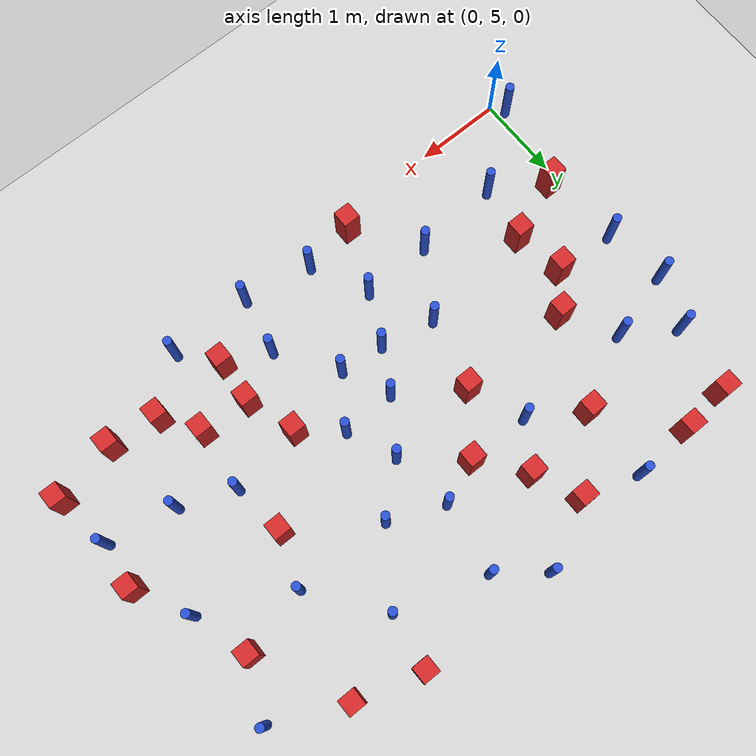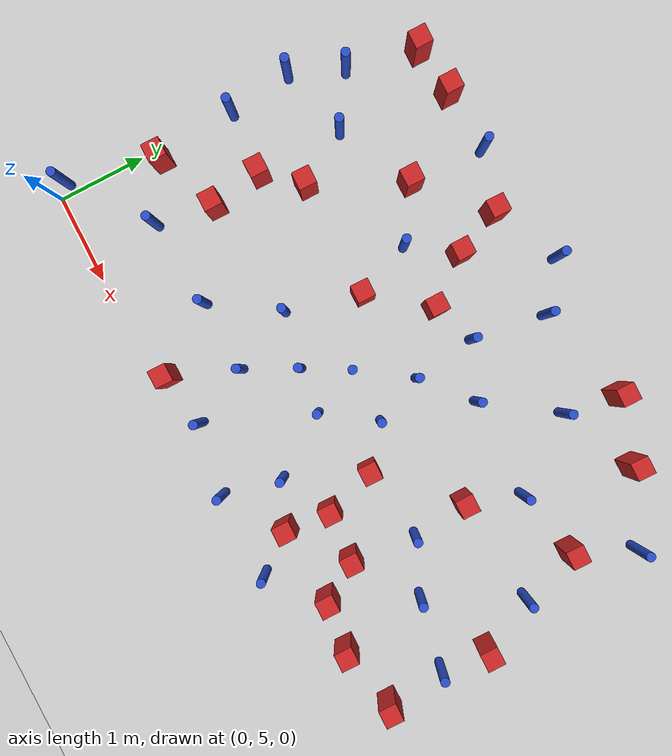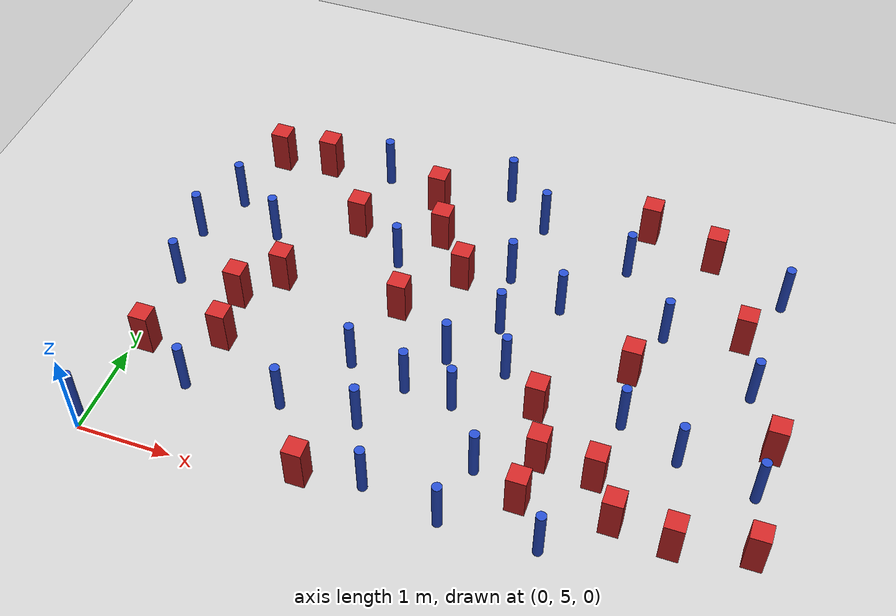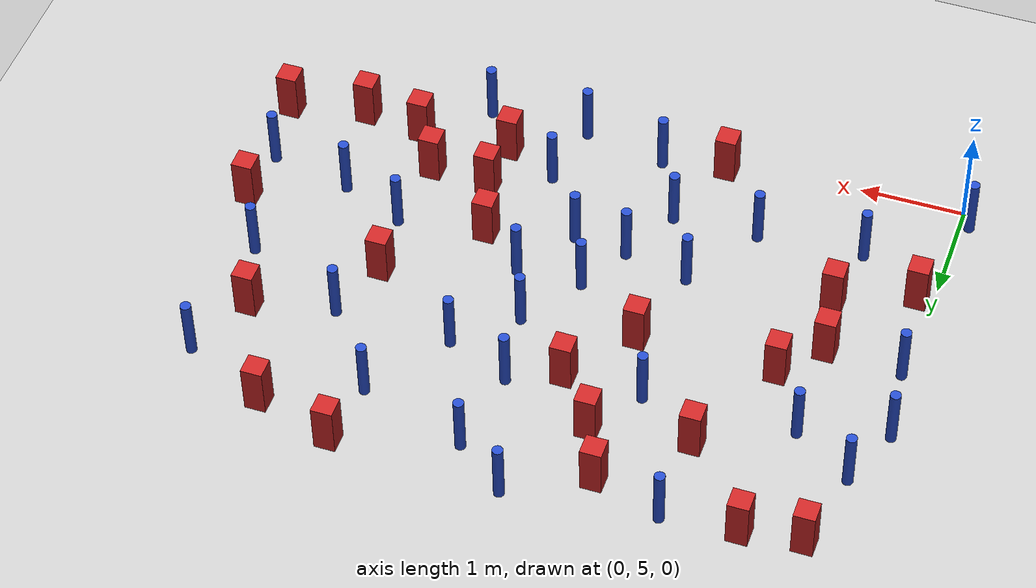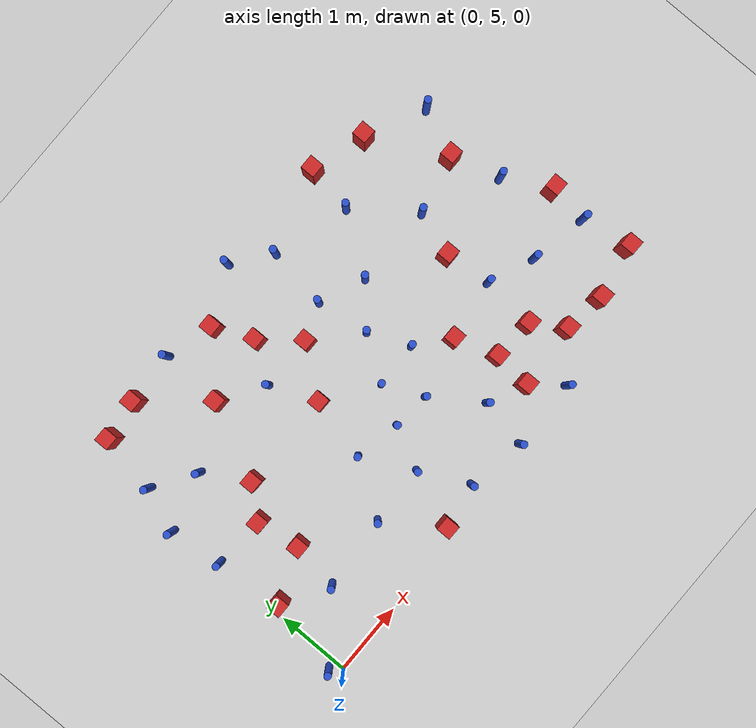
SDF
<sdf version="1.6">
 <world name="default">
  <model name="ground_plane">
   <static>1</static>
   <link name="link">
    <collision name="collision">
     <geometry><plane><normal>0 0 1</normal><size>100 100</size></plane></geometry>
     <surface><friction><ode><mu>100</mu><mu2>50</mu2></ode></friction></surface>
    </collision>
    <visual name="visual">
     <cast_shadows>0</cast_shadows>
     <geometry><plane><normal>0 0 1</normal><size>100 100</size></plane></geometry>
     <material>
      <ambient>1.0 1.0 1.0 1.0</ambient>
      <diffuse>0.8 0.8 0.8 1.0</diffuse>
      <specular>0.01 0.01 0.01 1.000000</specular>
     </material>
    </visual>
   </link>
  </model>
  <model name="square_post_obstacle10">
   <static>true</static>
   <pose>0.151992976209 6.1870169519 1.91545236811e-07 -7.35059704564e-06 1.12565212e-07 2.39332434364e-05</pose>
   <link name="link">
    <pose>0 0 0.25 0 -0 0</pose>
    <inertial>
     <mass>100</mass>
     <inertia>
      <ixx>0.166667</ixx>
      <ixy>0</ixy>
      <ixz>0</ixz>
      <iyy>0.166667</iyy>
      <iyz>0</iyz>
      <izz>0.166667</izz>
     </inertia>
    </inertial>
    <collision name="collision"><geometry><box><size>.2 .2 .5</size></box></geometry></collision>
    <visual name="visual">
     <geometry><box><size>.2 .2 .5</size></box></geometry>
     <material>
      <script><name>Gazebo/Red</name><uri>file://media/materials/scripts/gazebo.material</uri></script>
     </material>
    </visual>
   </link>
  </model>
  <model name="pole_obstacle9">
   <static>true</static>
   <pose>3.36343080901 6.44973814453 7.38925637345e-09 -8.47170692798e-08 1.24976765033e-08 -1.74513093019e-07</pose>
   <link name="link">
    <pose>0 0 0.3 0 -0 0</pose>
    <inertial>
     <mass>1</mass>
     <inertia><ixx>0.145833</ixx><ixy>0</ixy><ixz>0</ixz><iyy>0.145833</iyy><iyz>0</iyz><izz>0.125</izz></inertia>
    </inertial>
    <collision name="collision">
     <geometry><cylinder><radius>0.05</radius><length>.6</length></cylinder></geometry>
    </collision>
    <visual name="visual">
     <geometry><cylinder><radius>0.05</radius><length>.6</length></cylinder></geometry>
     <material>
      <script><name>Gazebo/Blue</name><uri>file://media/materials/scripts/gazebo.material</uri></script>
     </material>
    </visual>
   </link>
  </model>
  <model name="square_post_obstacle19">
   <static>true</static>
   <pose>4.9296306093 7.40265655572 1.91545236811e-07 -7.35059704564e-06 1.12565212e-07 2.39332434364e-05</pose>
   <link name="link">
    <pose>0 0 0.25 0 -0 0</pose>
    <inertial>
     <mass>100</mass>
     <inertia>
      <ixx>0.166667</ixx>
      <ixy>0</ixy>
      <ixz>0</ixz>
      <iyy>0.166667</iyy>
      <iyz>0</iyz>
      <izz>0.166667</izz>
     </inertia>
    </inertial>
    <collision name="collision"><geometry><box><size>.2 .2 .5</size></box></geometry></collision>
    <visual name="visual">
     <geometry><box><size>.2 .2 .5</size></box></geometry>
     <material>
      <script><name>Gazebo/Red</name><uri>file://media/materials/scripts/gazebo.material</uri></script>
     </material>
    </visual>
   </link>
  </model>
  <model name="pole_obstacle15">
   <static>true</static>
   <pose>-0.0874932379194 5.16151113422 7.38925637345e-09 -8.47170692799e-08 1.24976765047e-08 -1.74513093018e-07</pose>
   <link name="link">
    <pose>0 0 0.3 0 -0 0</pose>
    <inertial>
     <mass>1</mass>
     <inertia><ixx>0.145833</ixx><ixy>0</ixy><ixz>0</ixz><iyy>0.145833</iyy><iyz>0</iyz><izz>0.125</izz></inertia>
    </inertial>
    <collision name="collision">
     <geometry><cylinder><radius>0.05</radius><length>.6</length></cylinder></geometry>
    </collision>
    <visual name="visual">
     <geometry><cylinder><radius>0.05</radius><length>.6</length></cylinder></geometry>
     <material>
      <script><name>Gazebo/Blue</name><uri>file://media/materials/scripts/gazebo.material</uri></script>
     </material>
    </visual>
   </link>
  </model>
  <model name="square_post_obstacle31">
   <static>true</static>
   <pose>4.92170670618 6.05286431985 1.91545236811e-07 -7.35059704564e-06 1.12565212e-07 2.39332434364e-05</pose>
   <link name="link">
    <pose>0 0 0.25 0 -0 0</pose>
    <inertial>
     <mass>100</mass>
     <inertia>
      <ixx>0.166667</ixx>
      <ixy>0</ixy>
      <ixz>0</ixz>
      <iyy>0.166667</iyy>
      <iyz>0</iyz>
      <izz>0.166667</izz>
     </inertia>
    </inertial>
    <collision name="collision"><geometry><box><size>.2 .2 .5</size></box></geometry></collision>
    <visual name="visual">
     <geometry><box><size>.2 .2 .5</size></box></geometry>
     <material>
      <script><name>Gazebo/Red</name><uri>file://media/materials/scripts/gazebo.material</uri></script>
     </material>
    </visual>
   </link>
  </model>
  <model name="pole_obstacle28">
   <static>true</static>
   <pose>4.02785560214 8.01584696868 7.38925637345e-09 -8.47170692797e-08 1.24976764867e-08 -1.74513093027e-07</pose>
   <link name="link">
    <pose>0 0 0.3 0 -0 0</pose>
    <inertial>
     <mass>1</mass>
     <inertia><ixx>0.145833</ixx><ixy>0</ixy><ixz>0</ixz><iyy>0.145833</iyy><iyz>0</iyz><izz>0.125</izz></inertia>
    </inertial>
    <collision name="collision">
     <geometry><cylinder><radius>0.05</radius><length>.6</length></cylinder></geometry>
    </collision>
    <visual name="visual">
     <geometry><cylinder><radius>0.05</radius><length>.6</length></cylinder></geometry>
     <material>
      <script><name>Gazebo/Blue</name><uri>file://media/materials/scripts/gazebo.material</uri></script>
     </material>
    </visual>
   </link>
  </model>
  <model name="pole_obstacle32">
   <static>true</static>
   <pose>1.6374002094 9.31407670127 7.38925637345e-09 -8.47170692798e-08 1.24976764881e-08 -1.74513093027e-07</pose>
   <link name="link">
    <pose>0 0 0.3 0 -0 0</pose>
    <inertial>
     <mass>1</mass>
     <inertia><ixx>0.145833</ixx><ixy>0</ixy><ixz>0</ixz><iyy>0.145833</iyy><iyz>0</iyz><izz>0.125</izz></inertia>
    </inertial>
    <collision name="collision">
     <geometry><cylinder><radius>0.05</radius><length>.6</length></cylinder></geometry>
    </collision>
    <visual name="visual">
     <geometry><cylinder><radius>0.05</radius><length>.6</length></cylinder></geometry>
     <material>
      <script><name>Gazebo/Blue</name><uri>file://media/materials/scripts/gazebo.material</uri></script>
     </material>
    </visual>
   </link>
  </model>
  <model name="square_post_obstacle36">
   <static>true</static>
   <pose>0.368827195288 9.18581790718 1.91545236811e-07 -7.35059704564e-06 1.12565212e-07 2.39332434364e-05</pose>
   <link name="link">
    <pose>0 0 0.25 0 -0 0</pose>
    <inertial>
     <mass>100</mass>
     <inertia>
      <ixx>0.166667</ixx>
      <ixy>0</ixy>
      <ixz>0</ixz>
      <iyy>0.166667</iyy>
      <iyz>0</iyz>
      <izz>0.166667</izz>
     </inertia>
    </inertial>
    <collision name="collision"><geometry><box><size>.2 .2 .5</size></box></geometry></collision>
    <visual name="visual">
     <geometry><box><size>.2 .2 .5</size></box></geometry>
     <material>
      <script><name>Gazebo/Red</name><uri>file://media/materials/scripts/gazebo.material</uri></script>
     </material>
    </visual>
   </link>
  </model>
  <model name="pole_obstacle43">
   <static>true</static>
   <pose>2.18197336849 8.08795088133 7.38925637345e-09 -8.47170692793e-08 1.24976764408e-08 -1.74513093041e-07</pose>
   <link name="link">
    <pose>0 0 0.3 0 -0 0</pose>
    <inertial>
     <mass>1</mass>
     <inertia><ixx>0.145833</ixx><ixy>0</ixy><ixz>0</ixz><iyy>0.145833</iyy><iyz>0</iyz><izz>0.125</izz></inertia>
    </inertial>
    <collision name="collision">
     <geometry><cylinder><radius>0.05</radius><length>.6</length></cylinder></geometry>
    </collision>
    <visual name="visual">
     <geometry><cylinder><radius>0.05</radius><length>.6</length></cylinder></geometry>
     <material>
      <script><name>Gazebo/Blue</name><uri>file://media/materials/scripts/gazebo.material</uri></script>
     </material>
    </visual>
   </link>
  </model>
  <model name="square_post_obstacle41">
   <static>true</static>
   <pose>5.19305268845 5.63104877322 1.91545236811e-07 -7.35059704564e-06 1.12565212e-07 2.39332434364e-05</pose>
   <link name="link">
    <pose>0 0 0.25 0 -0 0</pose>
    <inertial>
     <mass>100</mass>
     <inertia>
      <ixx>0.166667</ixx>
      <ixy>0</ixy>
      <ixz>0</ixz>
      <iyy>0.166667</iyy>
      <iyz>0</iyz>
      <izz>0.166667</izz>
     </inertia>
    </inertial>
    <collision name="collision"><geometry><box><size>.2 .2 .5</size></box></geometry></collision>
    <visual name="visual">
     <geometry><box><size>.2 .2 .5</size></box></geometry>
     <material>
      <script><name>Gazebo/Red</name><uri>file://media/materials/scripts/gazebo.material</uri></script>
     </material>
    </visual>
   </link>
  </model>
  <model name="square_post_obstacle44">
   <static>true</static>
   <pose>6.49871803032 5.70818948966 1.91545236811e-07 -7.35059704564e-06 1.12565212e-07 2.39332434364e-05</pose>
   <link name="link">
    <pose>0 0 0.25 0 -0 0</pose>
    <inertial>
     <mass>100</mass>
     <inertia>
      <ixx>0.166667</ixx>
      <ixy>0</ixy>
      <ixz>0</ixz>
      <iyy>0.166667</iyy>
      <iyz>0</iyz>
      <izz>0.166667</izz>
     </inertia>
    </inertial>
    <collision name="collision"><geometry><box><size>.2 .2 .5</size></box></geometry></collision>
    <visual name="visual">
     <geometry><box><size>.2 .2 .5</size></box></geometry>
     <material>
      <script><name>Gazebo/Red</name><uri>file://media/materials/scripts/gazebo.material</uri></script>
     </material>
    </visual>
   </link>
  </model>
  <model name="pole_obstacle55">
   <static>true</static>
   <pose>2.22800821908 6.62263139917 7.38925637345e-09 -8.47170692798e-08 1.24976765033e-08 -1.74513093019e-07</pose>
   <link name="link">
    <pose>0 0 0.3 0 -0 0</pose>
    <inertial>
     <mass>1</mass>
     <inertia><ixx>0.145833</ixx><ixy>0</ixy><ixz>0</ixz><iyy>0.145833</iyy><iyz>0</iyz><izz>0.125</izz></inertia>
    </inertial>
    <collision name="collision">
     <geometry><cylinder><radius>0.05</radius><length>.6</length></cylinder></geometry>
    </collision>
    <visual name="visual">
     <geometry><cylinder><radius>0.05</radius><length>.6</length></cylinder></geometry>
     <material>
      <script><name>Gazebo/Blue</name><uri>file://media/materials/scripts/gazebo.material</uri></script>
     </material>
    </visual>
   </link>
  </model>
  <model name="pole_obstacle57">
   <static>true</static>
   <pose>5.61656441542 6.52375492074 7.38925637345e-09 -8.47170692796e-08 1.24976764786e-08 -1.74513093032e-07</pose>
   <link name="link">
    <pose>0 0 0.3 0 -0 0</pose>
    <inertial>
     <mass>1</mass>
     <inertia><ixx>0.145833</ixx><ixy>0</ixy><ixz>0</ixz><iyy>0.145833</iyy><iyz>0</iyz><izz>0.125</izz></inertia>
    </inertial>
    <collision name="collision">
     <geometry><cylinder><radius>0.05</radius><length>.6</length></cylinder></geometry>
    </collision>
    <visual name="visual">
     <geometry><cylinder><radius>0.05</radius><length>.6</length></cylinder></geometry>
     <material>
      <script><name>Gazebo/Blue</name><uri>file://media/materials/scripts/gazebo.material</uri></script>
     </material>
    </visual>
   </link>
  </model>
  <model name="square_post_obstacle61">
   <static>true</static>
   <pose>0.870536326492 6.46974710161 1.91545236811e-07 -7.35059704564e-06 1.12565212e-07 2.39332434364e-05</pose>
   <link name="link">
    <pose>0 0 0.25 0 -0 0</pose>
    <inertial>
     <mass>100</mass>
     <inertia>
      <ixx>0.166667</ixx>
      <ixy>0</ixy>
      <ixz>0</ixz>
      <iyy>0.166667</iyy>
      <iyz>0</iyz>
      <izz>0.166667</izz>
     </inertia>
    </inertial>
    <collision name="collision"><geometry><box><size>.2 .2 .5</size></box></geometry></collision>
    <visual name="visual">
     <geometry><box><size>.2 .2 .5</size></box></geometry>
     <material>
      <script><name>Gazebo/Red</name><uri>file://media/materials/scripts/gazebo.material</uri></script>
     </material>
    </visual>
   </link>
  </model>
  <model name="square_post_obstacle62">
   <static>true</static>
   <pose>2.92177803247 8.07981753765 1.91545236811e-07 -7.35059704564e-06 1.12565212e-07 2.39332434364e-05</pose>
   <link name="link">
    <pose>0 0 0.25 0 -0 0</pose>
    <inertial>
     <mass>100</mass>
     <inertia>
      <ixx>0.166667</ixx>
      <ixy>0</ixy>
      <ixz>0</ixz>
      <iyy>0.166667</iyy>
      <iyz>0</iyz>
      <izz>0.166667</izz>
     </inertia>
    </inertial>
    <collision name="collision"><geometry><box><size>.2 .2 .5</size></box></geometry></collision>
    <visual name="visual">
     <geometry><box><size>.2 .2 .5</size></box></geometry>
     <material>
      <script><name>Gazebo/Red</name><uri>file://media/materials/scripts/gazebo.material</uri></script>
     </material>
    </visual>
   </link>
  </model>
  <model name="square_post_obstacle63">
   <static>true</static>
   <pose>5.76634020264 5.56274920811 1.91545236811e-07 -7.35059704564e-06 1.12565212e-07 2.39332434364e-05</pose>
   <link name="link">
    <pose>0 0 0.25 0 -0 0</pose>
    <inertial>
     <mass>100</mass>
     <inertia>
      <ixx>0.166667</ixx>
      <ixy>0</ixy>
      <ixz>0</ixz>
      <iyy>0.166667</iyy>
      <iyz>0</iyz>
      <izz>0.166667</izz>
     </inertia>
    </inertial>
    <collision name="collision"><geometry><box><size>.2 .2 .5</size></box></geometry></collision>
    <visual name="visual">
     <geometry><box><size>.2 .2 .5</size></box></geometry>
     <material>
      <script><name>Gazebo/Red</name><uri>file://media/materials/scripts/gazebo.material</uri></script>
     </material>
    </visual>
   </link>
  </model>
  <model name="pole_obstacle61">
   <static>true</static>
   <pose>5.14303677029 8.00019826573 7.38925637345e-09 -8.47170692797e-08 1.24976764908e-08 -1.74513093024e-07</pose>
   <link name="link">
    <pose>0 0 0.3 0 -0 0</pose>
    <inertial>
     <mass>1</mass>
     <inertia><ixx>0.145833</ixx><ixy>0</ixy><ixz>0</ixz><iyy>0.145833</iyy><iyz>0</iyz><izz>0.125</izz></inertia>
    </inertial>
    <collision name="collision">
     <geometry><cylinder><radius>0.05</radius><length>.6</length></cylinder></geometry>
    </collision>
    <visual name="visual">
     <geometry><cylinder><radius>0.05</radius><length>.6</length></cylinder></geometry>
     <material>
      <script><name>Gazebo/Blue</name><uri>file://media/materials/scripts/gazebo.material</uri></script>
     </material>
    </visual>
   </link>
  </model>
  <model name="square_post_obstacle66">
   <static>true</static>
   <pose>2.52575549458 8.58097277092 1.91545236811e-07 -7.35059704564e-06 1.12565212e-07 2.39332434364e-05</pose>
   <link name="link">
    <pose>0 0 0.25 0 -0 0</pose>
    <inertial>
     <mass>100</mass>
     <inertia>
      <ixx>0.166667</ixx>
      <ixy>0</ixy>
      <ixz>0</ixz>
      <iyy>0.166667</iyy>
      <iyz>0</iyz>
      <izz>0.166667</izz>
     </inertia>
    </inertial>
    <collision name="collision"><geometry><box><size>.2 .2 .5</size></box></geometry></collision>
    <visual name="visual">
     <geometry><box><size>.2 .2 .5</size></box></geometry>
     <material>
      <script><name>Gazebo/Red</name><uri>file://media/materials/scripts/gazebo.material</uri></script>
     </material>
    </visual>
   </link>
  </model>
  <model name="pole_obstacle71">
   <static>true</static>
   <pose>2.56800197583 5.92733557667 7.38925637345e-09 -8.47170692798e-08 1.24976765033e-08 -1.74513093019e-07</pose>
   <link name="link">
    <pose>0 0 0.3 0 -0 0</pose>
    <inertial>
     <mass>1</mass>
     <inertia><ixx>0.145833</ixx><ixy>0</ixy><ixz>0</ixz><iyy>0.145833</iyy><iyz>0</iyz><izz>0.125</izz></inertia>
    </inertial>
    <collision name="collision">
     <geometry><cylinder><radius>0.05</radius><length>.6</length></cylinder></geometry>
    </collision>
    <visual name="visual">
     <geometry><cylinder><radius>0.05</radius><length>.6</length></cylinder></geometry>
     <material>
      <script><name>Gazebo/Blue</name><uri>file://media/materials/scripts/gazebo.material</uri></script>
     </material>
    </visual>
   </link>
  </model>
  <model name="pole_obstacle73">
   <static>true</static>
   <pose>3.40859424161 8.27516310228 7.38925637345e-09 -8.47170692793e-08 1.24976764408e-08 -1.74513093041e-07</pose>
   <link name="link">
    <pose>0 0 0.3 0 -0 0</pose>
    <inertial>
     <mass>1</mass>
     <inertia><ixx>0.145833</ixx><ixy>0</ixy><ixz>0</ixz><iyy>0.145833</iyy><iyz>0</iyz><izz>0.125</izz></inertia>
    </inertial>
    <collision name="collision">
     <geometry><cylinder><radius>0.05</radius><length>.6</length></cylinder></geometry>
    </collision>
    <visual name="visual">
     <geometry><cylinder><radius>0.05</radius><length>.6</length></cylinder></geometry>
     <material>
      <script><name>Gazebo/Blue</name><uri>file://media/materials/scripts/gazebo.material</uri></script>
     </material>
    </visual>
   </link>
  </model>
  <model name="pole_obstacle74">
   <static>true</static>
   <pose>3.67808885368 5.13739762422 7.38925637345e-09 -8.47170692798e-08 1.24976765033e-08 -1.74513093019e-07</pose>
   <link name="link">
    <pose>0 0 0.3 0 -0 0</pose>
    <inertial>
     <mass>1</mass>
     <inertia><ixx>0.145833</ixx><ixy>0</ixy><ixz>0</ixz><iyy>0.145833</iyy><iyz>0</iyz><izz>0.125</izz></inertia>
    </inertial>
    <collision name="collision">
     <geometry><cylinder><radius>0.05</radius><length>.6</length></cylinder></geometry>
    </collision>
    <visual name="visual">
     <geometry><cylinder><radius>0.05</radius><length>.6</length></cylinder></geometry>
     <material>
      <script><name>Gazebo/Blue</name><uri>file://media/materials/scripts/gazebo.material</uri></script>
     </material>
    </visual>
   </link>
  </model>
  <model name="pole_obstacle79">
   <static>true</static>
   <pose>2.85012395426 6.49689380251 7.38925637345e-09 -8.47170692798e-08 1.24976765033e-08 -1.74513093019e-07</pose>
   <link name="link">
    <pose>0 0 0.3 0 -0 0</pose>
    <inertial>
     <mass>1</mass>
     <inertia><ixx>0.145833</ixx><ixy>0</ixy><ixz>0</ixz><iyy>0.145833</iyy><iyz>0</iyz><izz>0.125</izz></inertia>
    </inertial>
    <collision name="collision">
     <geometry><cylinder><radius>0.05</radius><length>.6</length></cylinder></geometry>
    </collision>
    <visual name="visual">
     <geometry><cylinder><radius>0.05</radius><length>.6</length></cylinder></geometry>
     <material>
      <script><name>Gazebo/Blue</name><uri>file://media/materials/scripts/gazebo.material</uri></script>
     </material>
    </visual>
   </link>
  </model>
  <model name="square_post_obstacle87">
   <static>true</static>
   <pose>2.44147343748 7.45355697426 1.91545236811e-07 -7.35059704564e-06 1.12565212e-07 2.39332434364e-05</pose>
   <link name="link">
    <pose>0 0 0.25 0 -0 0</pose>
    <inertial>
     <mass>100</mass>
     <inertia>
      <ixx>0.166667</ixx>
      <ixy>0</ixy>
      <ixz>0</ixz>
      <iyy>0.166667</iyy>
      <iyz>0</iyz>
      <izz>0.166667</izz>
     </inertia>
    </inertial>
    <collision name="collision"><geometry><box><size>.2 .2 .5</size></box></geometry></collision>
    <visual name="visual">
     <geometry><box><size>.2 .2 .5</size></box></geometry>
     <material>
      <script><name>Gazebo/Red</name><uri>file://media/materials/scripts/gazebo.material</uri></script>
     </material>
    </visual>
   </link>
  </model>
  <model name="pole_obstacle98">
   <static>true</static>
   <pose>6.39923909733 6.37224176932 7.38925637345e-09 -8.47170692796e-08 1.24976764786e-08 -1.74513093032e-07</pose>
   <link name="link">
    <pose>0 0 0.3 0 -0 0</pose>
    <inertial>
     <mass>1</mass>
     <inertia><ixx>0.145833</ixx><ixy>0</ixy><ixz>0</ixz><iyy>0.145833</iyy><iyz>0</iyz><izz>0.125</izz></inertia>
    </inertial>
    <collision name="collision">
     <geometry><cylinder><radius>0.05</radius><length>.6</length></cylinder></geometry>
    </collision>
    <visual name="visual">
     <geometry><cylinder><radius>0.05</radius><length>.6</length></cylinder></geometry>
     <material>
      <script><name>Gazebo/Blue</name><uri>file://media/materials/scripts/gazebo.material</uri></script>
     </material>
    </visual>
   </link>
  </model>
  <model name="square_post_obstacle91">
   <static>true</static>
   <pose>5.91976011503 8.18398734425 1.91545236811e-07 -7.35059704564e-06 1.12565212e-07 2.39332434364e-05</pose>
   <link name="link">
    <pose>0 0 0.25 0 -0 0</pose>
    <inertial>
     <mass>100</mass>
     <inertia>
      <ixx>0.166667</ixx>
      <ixy>0</ixy>
      <ixz>0</ixz>
      <iyy>0.166667</iyy>
      <iyz>0</iyz>
      <izz>0.166667</izz>
     </inertia>
    </inertial>
    <collision name="collision"><geometry><box><size>.2 .2 .5</size></box></geometry></collision>
    <visual name="visual">
     <geometry><box><size>.2 .2 .5</size></box></geometry>
     <material>
      <script><name>Gazebo/Red</name><uri>file://media/materials/scripts/gazebo.material</uri></script>
     </material>
    </visual>
   </link>
  </model>
  <model name="pole_obstacle105">
   <static>true</static>
   <pose>0.766034801049 8.0371673161 7.38925637345e-09 -8.47170692798e-08 1.24976764951e-08 -1.74513093022e-07</pose>
   <link name="link">
    <pose>0 0 0.3 0 -0 0</pose>
    <inertial>
     <mass>1</mass>
     <inertia><ixx>0.145833</ixx><ixy>0</ixy><ixz>0</ixz><iyy>0.145833</iyy><iyz>0</iyz><izz>0.125</izz></inertia>
    </inertial>
    <collision name="collision">
     <geometry><cylinder><radius>0.05</radius><length>.6</length></cylinder></geometry>
    </collision>
    <visual name="visual">
     <geometry><cylinder><radius>0.05</radius><length>.6</length></cylinder></geometry>
     <material>
      <script><name>Gazebo/Blue</name><uri>file://media/materials/scripts/gazebo.material</uri></script>
     </material>
    </visual>
   </link>
  </model>
  <model name="pole_obstacle110">
   <static>true</static>
   <pose>4.6401893928 5.15509402249 7.38925637345e-09 -8.47170692796e-08 1.24976764786e-08 -1.74513093032e-07</pose>
   <link name="link">
    <pose>0 0 0.3 0 -0 0</pose>
    <inertial>
     <mass>1</mass>
     <inertia><ixx>0.145833</ixx><ixy>0</ixy><ixz>0</ixz><iyy>0.145833</iyy><iyz>0</iyz><izz>0.125</izz></inertia>
    </inertial>
    <collision name="collision">
     <geometry><cylinder><radius>0.05</radius><length>.6</length></cylinder></geometry>
    </collision>
    <visual name="visual">
     <geometry><cylinder><radius>0.05</radius><length>.6</length></cylinder></geometry>
     <material>
      <script><name>Gazebo/Blue</name><uri>file://media/materials/scripts/gazebo.material</uri></script>
     </material>
    </visual>
   </link>
  </model>
  <model name="square_post_obstacle100">
   <static>true</static>
   <pose>0.929946026453 9.25792556736 1.91545236811e-07 -7.35059704564e-06 1.12565212e-07 2.39332434364e-05</pose>
   <link name="link">
    <pose>0 0 0.25 0 -0 0</pose>
    <inertial>
     <mass>100</mass>
     <inertia>
      <ixx>0.166667</ixx>
      <ixy>0</ixy>
      <ixz>0</ixz>
      <iyy>0.166667</iyy>
      <iyz>0</iyz>
      <izz>0.166667</izz>
     </inertia>
    </inertial>
    <collision name="collision"><geometry><box><size>.2 .2 .5</size></box></geometry></collision>
    <visual name="visual">
     <geometry><box><size>.2 .2 .5</size></box></geometry>
     <material>
      <script><name>Gazebo/Red</name><uri>file://media/materials/scripts/gazebo.material</uri></script>
     </material>
    </visual>
   </link>
  </model>
  <model name="square_post_obstacle105">
   <static>true</static>
   <pose>4.65602596976 9.41579569156 1.91545236811e-07 -7.35059704564e-06 1.12565212e-07 2.39332434364e-05</pose>
   <link name="link">
    <pose>0 0 0.25 0 -0 0</pose>
    <inertial>
     <mass>100</mass>
     <inertia>
      <ixx>0.166667</ixx>
      <ixy>0</ixy>
      <ixz>0</ixz>
      <iyy>0.166667</iyy>
      <iyz>0</iyz>
      <izz>0.166667</izz>
     </inertia>
    </inertial>
    <collision name="collision"><geometry><box><size>.2 .2 .5</size></box></geometry></collision>
    <visual name="visual">
     <geometry><box><size>.2 .2 .5</size></box></geometry>
     <material>
      <script><name>Gazebo/Red</name><uri>file://media/materials/scripts/gazebo.material</uri></script>
     </material>
    </visual>
   </link>
  </model>
  <model name="pole_obstacle121">
   <static>true</static>
   <pose>3.53360390579 9.10298897618 7.38925637345e-09 -8.47170692793e-08 1.24976764408e-08 -1.74513093041e-07</pose>
   <link name="link">
    <pose>0 0 0.3 0 -0 0</pose>
    <inertial>
     <mass>1</mass>
     <inertia><ixx>0.145833</ixx><ixy>0</ixy><ixz>0</ixz><iyy>0.145833</iyy><iyz>0</iyz><izz>0.125</izz></inertia>
    </inertial>
    <collision name="collision">
     <geometry><cylinder><radius>0.05</radius><length>.6</length></cylinder></geometry>
    </collision>
    <visual name="visual">
     <geometry><cylinder><radius>0.05</radius><length>.6</length></cylinder></geometry>
     <material>
      <script><name>Gazebo/Blue</name><uri>file://media/materials/scripts/gazebo.material</uri></script>
     </material>
    </visual>
   </link>
  </model>
  <model name="pole_obstacle125">
   <static>true</static>
   <pose>5.00405402076 6.7747388117 7.38925637345e-09 -8.47170692796e-08 1.24976764786e-08 -1.74513093032e-07</pose>
   <link name="link">
    <pose>0 0 0.3 0 -0 0</pose>
    <inertial>
     <mass>1</mass>
     <inertia><ixx>0.145833</ixx><ixy>0</ixy><ixz>0</ixz><iyy>0.145833</iyy><iyz>0</iyz><izz>0.125</izz></inertia>
    </inertial>
    <collision name="collision">
     <geometry><cylinder><radius>0.05</radius><length>.6</length></cylinder></geometry>
    </collision>
    <visual name="visual">
     <geometry><cylinder><radius>0.05</radius><length>.6</length></cylinder></geometry>
     <material>
      <script><name>Gazebo/Blue</name><uri>file://media/materials/scripts/gazebo.material</uri></script>
     </material>
    </visual>
   </link>
  </model>
  <model name="pole_obstacle132">
   <static>true</static>
   <pose>3.74436169207 7.00486089346 7.38925637345e-09 -8.47170692798e-08 1.24976765033e-08 -1.74513093019e-07</pose>
   <link name="link">
    <pose>0 0 0.3 0 -0 0</pose>
    <inertial>
     <mass>1</mass>
     <inertia><ixx>0.145833</ixx><ixy>0</ixy><ixz>0</ixz><iyy>0.145833</iyy><iyz>0</iyz><izz>0.125</izz></inertia>
    </inertial>
    <collision name="collision">
     <geometry><cylinder><radius>0.05</radius><length>.6</length></cylinder></geometry>
    </collision>
    <visual name="visual">
     <geometry><cylinder><radius>0.05</radius><length>.6</length></cylinder></geometry>
     <material>
      <script><name>Gazebo/Blue</name><uri>file://media/materials/scripts/gazebo.material</uri></script>
     </material>
    </visual>
   </link>
  </model>
  <model name="square_post_obstacle115">
   <static>true</static>
   <pose>1.12304651628 7.44386023354 1.91545236811e-07 -7.35059704564e-06 1.12565212e-07 2.39332434364e-05</pose>
   <link name="link">
    <pose>0 0 0.25 0 -0 0</pose>
    <inertial>
     <mass>100</mass>
     <inertia>
      <ixx>0.166667</ixx>
      <ixy>0</ixy>
      <ixz>0</ixz>
      <iyy>0.166667</iyy>
      <iyz>0</iyz>
      <izz>0.166667</izz>
     </inertia>
    </inertial>
    <collision name="collision"><geometry><box><size>.2 .2 .5</size></box></geometry></collision>
    <visual name="visual">
     <geometry><box><size>.2 .2 .5</size></box></geometry>
     <material>
      <script><name>Gazebo/Red</name><uri>file://media/materials/scripts/gazebo.material</uri></script>
     </material>
    </visual>
   </link>
  </model>
  <model name="square_post_obstacle126">
   <static>true</static>
   <pose>2.29597186288 9.10795315082 1.91545236811e-07 -7.35059704564e-06 1.12565212e-07 2.39332434364e-05</pose>
   <link name="link">
    <pose>0 0 0.25 0 -0 0</pose>
    <inertial>
     <mass>100</mass>
     <inertia>
      <ixx>0.166667</ixx>
      <ixy>0</ixy>
      <ixz>0</ixz>
      <iyy>0.166667</iyy>
      <iyz>0</iyz>
      <izz>0.166667</izz>
     </inertia>
    </inertial>
    <collision name="collision"><geometry><box><size>.2 .2 .5</size></box></geometry></collision>
    <visual name="visual">
     <geometry><box><size>.2 .2 .5</size></box></geometry>
     <material>
      <script><name>Gazebo/Red</name><uri>file://media/materials/scripts/gazebo.material</uri></script>
     </material>
    </visual>
   </link>
  </model>
  <model name="square_post_obstacle132">
   <static>true</static>
   <pose>1.6035164715 8.45691432963 1.91545236811e-07 -7.35059704564e-06 1.12565212e-07 2.39332434364e-05</pose>
   <link name="link">
    <pose>0 0 0.25 0 -0 0</pose>
    <inertial>
     <mass>100</mass>
     <inertia>
      <ixx>0.166667</ixx>
      <ixy>0</ixy>
      <ixz>0</ixz>
      <iyy>0.166667</iyy>
      <iyz>0</iyz>
      <izz>0.166667</izz>
     </inertia>
    </inertial>
    <collision name="collision"><geometry><box><size>.2 .2 .5</size></box></geometry></collision>
    <visual name="visual">
     <geometry><box><size>.2 .2 .5</size></box></geometry>
     <material>
      <script><name>Gazebo/Red</name><uri>file://media/materials/scripts/gazebo.material</uri></script>
     </material>
    </visual>
   </link>
  </model>
  <model name="pole_obstacle143">
   <static>true</static>
   <pose>6.13740188451 7.52502674928 7.38925637345e-09 -8.47170692796e-08 1.24976764786e-08 -1.74513093032e-07</pose>
   <link name="link">
    <pose>0 0 0.3 0 -0 0</pose>
    <inertial>
     <mass>1</mass>
     <inertia><ixx>0.145833</ixx><ixy>0</ixy><ixz>0</ixz><iyy>0.145833</iyy><iyz>0</iyz><izz>0.125</izz></inertia>
    </inertial>
    <collision name="collision">
     <geometry><cylinder><radius>0.05</radius><length>.6</length></cylinder></geometry>
    </collision>
    <visual name="visual">
     <geometry><cylinder><radius>0.05</radius><length>.6</length></cylinder></geometry>
     <material>
      <script><name>Gazebo/Blue</name><uri>file://media/materials/scripts/gazebo.material</uri></script>
     </material>
    </visual>
   </link>
  </model>
  <model name="pole_obstacle153">
   <static>true</static>
   <pose>3.81137756104 5.7948061412 7.38925637345e-09 -8.47170692798e-08 1.24976765033e-08 -1.74513093019e-07</pose>
   <link name="link">
    <pose>0 0 0.3 0 -0 0</pose>
    <inertial>
     <mass>1</mass>
     <inertia><ixx>0.145833</ixx><ixy>0</ixy><ixz>0</ixz><iyy>0.145833</iyy><iyz>0</iyz><izz>0.125</izz></inertia>
    </inertial>
    <collision name="collision">
     <geometry><cylinder><radius>0.05</radius><length>.6</length></cylinder></geometry>
    </collision>
    <visual name="visual">
     <geometry><cylinder><radius>0.05</radius><length>.6</length></cylinder></geometry>
     <material>
      <script><name>Gazebo/Blue</name><uri>file://media/materials/scripts/gazebo.material</uri></script>
     </material>
    </visual>
   </link>
  </model>
  <model name="square_post_obstacle144">
   <static>true</static>
   <pose>4.16829704794 6.65675933378 1.91545236811e-07 -7.35059704564e-06 1.12565212e-07 2.39332434364e-05</pose>
   <link name="link">
    <pose>0 0 0.25 0 -0 0</pose>
    <inertial>
     <mass>100</mass>
     <inertia>
      <ixx>0.166667</ixx>
      <ixy>0</ixy>
      <ixz>0</ixz>
      <iyy>0.166667</iyy>
      <iyz>0</iyz>
      <izz>0.166667</izz>
     </inertia>
    </inertial>
    <collision name="collision"><geometry><box><size>.2 .2 .5</size></box></geometry></collision>
    <visual name="visual">
     <geometry><box><size>.2 .2 .5</size></box></geometry>
     <material>
      <script><name>Gazebo/Red</name><uri>file://media/materials/scripts/gazebo.material</uri></script>
     </material>
    </visual>
   </link>
  </model>
  <model name="pole_obstacle157">
   <static>true</static>
   <pose>2.88295370208 5.27553275032 7.38925637345e-09 -8.47170692798e-08 1.24976765033e-08 -1.74513093019e-07</pose>
   <link name="link">
    <pose>0 0 0.3 0 -0 0</pose>
    <inertial>
     <mass>1</mass>
     <inertia><ixx>0.145833</ixx><ixy>0</ixy><ixz>0</ixz><iyy>0.145833</iyy><iyz>0</iyz><izz>0.125</izz></inertia>
    </inertial>
    <collision name="collision">
     <geometry><cylinder><radius>0.05</radius><length>.6</length></cylinder></geometry>
    </collision>
    <visual name="visual">
     <geometry><cylinder><radius>0.05</radius><length>.6</length></cylinder></geometry>
     <material>
      <script><name>Gazebo/Blue</name><uri>file://media/materials/scripts/gazebo.material</uri></script>
     </material>
    </visual>
   </link>
  </model>
  <model name="pole_obstacle158">
   <static>true</static>
   <pose>3.51139951347 7.55841829101 7.38925637345e-09 -8.47170692798e-08 1.24976765033e-08 -1.74513093019e-07</pose>
   <link name="link">
    <pose>0 0 0.3 0 -0 0</pose>
    <inertial>
     <mass>1</mass>
     <inertia><ixx>0.145833</ixx><ixy>0</ixy><ixz>0</ixz><iyy>0.145833</iyy><iyz>0</iyz><izz>0.125</izz></inertia>
    </inertial>
    <collision name="collision">
     <geometry><cylinder><radius>0.05</radius><length>.6</length></cylinder></geometry>
    </collision>
    <visual name="visual">
     <geometry><cylinder><radius>0.05</radius><length>.6</length></cylinder></geometry>
     <material>
      <script><name>Gazebo/Blue</name><uri>file://media/materials/scripts/gazebo.material</uri></script>
     </material>
    </visual>
   </link>
  </model>
  <model name="pole_obstacle159">
   <static>true</static>
   <pose>0.0564060818961 7.09713241009 7.38925637345e-09 -8.471706928e-08 1.2497676505e-08 -1.74513093019e-07</pose>
   <link name="link">
    <pose>0 0 0.3 0 -0 0</pose>
    <inertial>
     <mass>1</mass>
     <inertia><ixx>0.145833</ixx><ixy>0</ixy><ixz>0</ixz><iyy>0.145833</iyy><iyz>0</iyz><izz>0.125</izz></inertia>
    </inertial>
    <collision name="collision">
     <geometry><cylinder><radius>0.05</radius><length>.6</length></cylinder></geometry>
    </collision>
    <visual name="visual">
     <geometry><cylinder><radius>0.05</radius><length>.6</length></cylinder></geometry>
     <material>
      <script><name>Gazebo/Blue</name><uri>file://media/materials/scripts/gazebo.material</uri></script>
     </material>
    </visual>
   </link>
  </model>
  <model name="pole_obstacle160">
   <static>true</static>
   <pose>1.7559888459 5.89936059433 7.38925637345e-09 -8.47170692799e-08 1.24976765033e-08 -1.74513093018e-07</pose>
   <link name="link">
    <pose>0 0 0.3 0 -0 0</pose>
    <inertial>
     <mass>1</mass>
     <inertia><ixx>0.145833</ixx><ixy>0</ixy><ixz>0</ixz><iyy>0.145833</iyy><iyz>0</iyz><izz>0.125</izz></inertia>
    </inertial>
    <collision name="collision">
     <geometry><cylinder><radius>0.05</radius><length>.6</length></cylinder></geometry>
    </collision>
    <visual name="visual">
     <geometry><cylinder><radius>0.05</radius><length>.6</length></cylinder></geometry>
     <material>
      <script><name>Gazebo/Blue</name><uri>file://media/materials/scripts/gazebo.material</uri></script>
     </material>
    </visual>
   </link>
  </model>
  <model name="square_post_obstacle158">
   <static>true</static>
   <pose>2.2720367944 5.18077405404 1.91545236811e-07 -7.35059704564e-06 1.12565212e-07 2.39332434364e-05</pose>
   <link name="link">
    <pose>0 0 0.25 0 -0 0</pose>
    <inertial>
     <mass>100</mass>
     <inertia>
      <ixx>0.166667</ixx>
      <ixy>0</ixy>
      <ixz>0</ixz>
      <iyy>0.166667</iyy>
      <iyz>0</iyz>
      <izz>0.166667</izz>
     </inertia>
    </inertial>
    <collision name="collision"><geometry><box><size>.2 .2 .5</size></box></geometry></collision>
    <visual name="visual">
     <geometry><box><size>.2 .2 .5</size></box></geometry>
     <material>
      <script><name>Gazebo/Red</name><uri>file://media/materials/scripts/gazebo.material</uri></script>
     </material>
    </visual>
   </link>
  </model>
  <model name="pole_obstacle170">
   <static>true</static>
   <pose>-0.035095900118 7.8166282514 7.38925637345e-09 -8.47170692799e-08 1.24976765086e-08 -1.74513093017e-07</pose>
   <link name="link">
    <pose>0 0 0.3 0 -0 0</pose>
    <inertial>
     <mass>1</mass>
     <inertia><ixx>0.145833</ixx><ixy>0</ixy><ixz>0</ixz><iyy>0.145833</iyy><iyz>0</iyz><izz>0.125</izz></inertia>
    </inertial>
    <collision name="collision">
     <geometry><cylinder><radius>0.05</radius><length>.6</length></cylinder></geometry>
    </collision>
    <visual name="visual">
     <geometry><cylinder><radius>0.05</radius><length>.6</length></cylinder></geometry>
     <material>
      <script><name>Gazebo/Blue</name><uri>file://media/materials/scripts/gazebo.material</uri></script>
     </material>
    </visual>
   </link>
  </model>
  <model name="pole_obstacle174">
   <static>true</static>
   <pose>0.200102879849 8.40042517079 7.38925637345e-09 -8.47170692797e-08 1.24976764785e-08 -1.74513093032e-07</pose>
   <link name="link">
    <pose>0 0 0.3 0 -0 0</pose>
    <inertial>
     <mass>1</mass>
     <inertia><ixx>0.145833</ixx><ixy>0</ixy><ixz>0</ixz><iyy>0.145833</iyy><iyz>0</iyz><izz>0.125</izz></inertia>
    </inertial>
    <collision name="collision">
     <geometry><cylinder><radius>0.05</radius><length>.6</length></cylinder></geometry>
    </collision>
    <visual name="visual">
     <geometry><cylinder><radius>0.05</radius><length>.6</length></cylinder></geometry>
     <material>
      <script><name>Gazebo/Blue</name><uri>file://media/materials/scripts/gazebo.material</uri></script>
     </material>
    </visual>
   </link>
  </model>
  <model name="square_post_obstacle169">
   <static>true</static>
   <pose>6.45603427493 6.9106647905 1.91545236811e-07 -7.35059704564e-06 1.12565212e-07 2.39332434364e-05</pose>
   <link name="link">
    <pose>0 0 0.25 0 -0 0</pose>
    <inertial>
     <mass>100</mass>
     <inertia>
      <ixx>0.166667</ixx>
      <ixy>0</ixy>
      <ixz>0</ixz>
      <iyy>0.166667</iyy>
      <iyz>0</iyz>
      <izz>0.166667</izz>
     </inertia>
    </inertial>
    <collision name="collision"><geometry><box><size>.2 .2 .5</size></box></geometry></collision>
    <visual name="visual">
     <geometry><box><size>.2 .2 .5</size></box></geometry>
     <material>
      <script><name>Gazebo/Red</name><uri>file://media/materials/scripts/gazebo.material</uri></script>
     </material>
    </visual>
   </link>
  </model>
  <model name="pole_obstacle180">
   <static>true</static>
   <pose>4.56127396617 8.78491110259 7.38925637345e-09 -8.471706928e-08 1.24976765081e-08 -1.74513093015e-07</pose>
   <link name="link">
    <pose>0 0 0.3 0 -0 0</pose>
    <inertial>
     <mass>1</mass>
     <inertia><ixx>0.145833</ixx><ixy>0</ixy><ixz>0</ixz><iyy>0.145833</iyy><iyz>0</iyz><izz>0.125</izz></inertia>
    </inertial>
    <collision name="collision">
     <geometry><cylinder><radius>0.05</radius><length>.6</length></cylinder></geometry>
    </collision>
    <visual name="visual">
     <geometry><cylinder><radius>0.05</radius><length>.6</length></cylinder></geometry>
     <material>
      <script><name>Gazebo/Blue</name><uri>file://media/materials/scripts/gazebo.material</uri></script>
     </material>
    </visual>
   </link>
  </model>
  <model name="square_post_obstacle176">
   <static>true</static>
   <pose>4.31104614653 5.57471423358 1.91545236811e-07 -7.35059704564e-06 1.12565212e-07 2.39332434364e-05</pose>
   <link name="link">
    <pose>0 0 0.25 0 -0 0</pose>
    <inertial>
     <mass>100</mass>
     <inertia>
      <ixx>0.166667</ixx>
      <ixy>0</ixy>
      <ixz>0</ixz>
      <iyy>0.166667</iyy>
      <iyz>0</iyz>
      <izz>0.166667</izz>
     </inertia>
    </inertial>
    <collision name="collision"><geometry><box><size>.2 .2 .5</size></box></geometry></collision>
    <visual name="visual">
     <geometry><box><size>.2 .2 .5</size></box></geometry>
     <material>
      <script><name>Gazebo/Red</name><uri>file://media/materials/scripts/gazebo.material</uri></script>
     </material>
    </visual>
   </link>
  </model>
  <model name="square_post_obstacle183">
   <static>true</static>
   <pose>5.40485420572 9.19671764414 1.91545236811e-07 -7.35059704564e-06 1.12565212e-07 2.39332434364e-05</pose>
   <link name="link">
    <pose>0 0 0.25 0 -0 0</pose>
    <inertial>
     <mass>100</mass>
     <inertia>
      <ixx>0.166667</ixx>
      <ixy>0</ixy>
      <ixz>0</ixz>
      <iyy>0.166667</iyy>
      <iyz>0</iyz>
      <izz>0.166667</izz>
     </inertia>
    </inertial>
    <collision name="collision"><geometry><box><size>.2 .2 .5</size></box></geometry></collision>
    <visual name="visual">
     <geometry><box><size>.2 .2 .5</size></box></geometry>
     <material>
      <script><name>Gazebo/Red</name><uri>file://media/materials/scripts/gazebo.material</uri></script>
     </material>
    </visual>
   </link>
  </model>
  <model name="square_post_obstacle194">
   <static>true</static>
   <pose>0.779925598034 7.05338165154 1.91545236811e-07 -7.35059704564e-06 1.12565212e-07 2.39332434364e-05</pose>
   <link name="link">
    <pose>0 0 0.25 0 -0 0</pose>
    <inertial>
     <mass>100</mass>
     <inertia>
      <ixx>0.166667</ixx>
      <ixy>0</ixy>
      <ixz>0</ixz>
      <iyy>0.166667</iyy>
      <iyz>0</iyz>
      <izz>0.166667</izz>
     </inertia>
    </inertial>
    <collision name="collision"><geometry><box><size>.2 .2 .5</size></box></geometry></collision>
    <visual name="visual">
     <geometry><box><size>.2 .2 .5</size></box></geometry>
     <material>
      <script><name>Gazebo/Red</name><uri>file://media/materials/scripts/gazebo.material</uri></script>
     </material>
    </visual>
   </link>
  </model>
  <model name="square_post_obstacle199">
   <static>true</static>
   <pose>4.35528903144 6.08631969722 1.91545236811e-07 -7.35059704564e-06 1.12565212e-07 2.39332434364e-05</pose>
   <link name="link">
    <pose>0 0 0.25 0 -0 0</pose>
    <inertial>
     <mass>100</mass>
     <inertia>
      <ixx>0.166667</ixx>
      <ixy>0</ixy>
      <ixz>0</ixz>
      <iyy>0.166667</iyy>
      <iyz>0</iyz>
      <izz>0.166667</izz>
     </inertia>
    </inertial>
    <collision name="collision"><geometry><box><size>.2 .2 .5</size></box></geometry></collision>
    <visual name="visual">
     <geometry><box><size>.2 .2 .5</size></box></geometry>
     <material>
      <script><name>Gazebo/Red</name><uri>file://media/materials/scripts/gazebo.material</uri></script>
     </material>
    </visual>
   </link>
  </model>
  <model name="pole_obstacle198">
   <static>true</static>
   <pose>3.03738136497 9.48602931833 7.38925637345e-09 -8.47170692793e-08 1.24976764408e-08 -1.74513093041e-07</pose>
   <link name="link">
    <pose>0 0 0.3 0 -0 0</pose>
    <inertial>
     <mass>1</mass>
     <inertia><ixx>0.145833</ixx><ixy>0</ixy><ixz>0</ixz><iyy>0.145833</iyy><iyz>0</iyz><izz>0.125</izz></inertia>
    </inertial>
    <collision name="collision">
     <geometry><cylinder><radius>0.05</radius><length>.6</length></cylinder></geometry>
    </collision>
    <visual name="visual">
     <geometry><cylinder><radius>0.05</radius><length>.6</length></cylinder></geometry>
     <material>
      <script><name>Gazebo/Blue</name><uri>file://media/materials/scripts/gazebo.material</uri></script>
     </material>
    </visual>
   </link>
  </model>
  <model name="pole_obstacle217">
   <static>true</static>
   <pose>6.21805000957 8.82651002078 7.38925637345e-09 -8.471706928e-08 1.24976765081e-08 -1.74513093015e-07</pose>
   <link name="link">
    <pose>0 0 0.3 0 -0 0</pose>
    <inertial>
     <mass>1</mass>
     <inertia><ixx>0.145833</ixx><ixy>0</ixy><ixz>0</ixz><iyy>0.145833</iyy><iyz>0</iyz><izz>0.125</izz></inertia>
    </inertial>
    <collision name="collision">
     <geometry><cylinder><radius>0.05</radius><length>.6</length></cylinder></geometry>
    </collision>
    <visual name="visual">
     <geometry><cylinder><radius>0.05</radius><length>.6</length></cylinder></geometry>
     <material>
      <script><name>Gazebo/Blue</name><uri>file://media/materials/scripts/gazebo.material</uri></script>
     </material>
    </visual>
   </link>
  </model>
  <model name="pole_obstacle221">
   <static>true</static>
   <pose>3.12352000957 6.98500002078 7.38925637345e-09 -8.47170692798e-08 1.24976765033e-08 -1.74513093019e-07</pose>
   <link name="link">
    <pose>0 0 0.3 0 -0 0</pose>
    <inertial>
     <mass>1</mass>
     <inertia><ixx>0.145833</ixx><ixy>0</ixy><ixz>0</ixz><iyy>0.145833</iyy><iyz>0</iyz><izz>0.125</izz></inertia>
    </inertial>
    <collision name="collision">
     <geometry><cylinder><radius>0.05</radius><length>.6</length></cylinder></geometry>
    </collision>
    <visual name="visual">
     <geometry><cylinder><radius>0.05</radius><length>.6</length></cylinder></geometry>
     <material>
      <script><name>Gazebo/Blue</name><uri>file://media/materials/scripts/gazebo.material</uri></script>
     </material>
    </visual>
   </link>
  </model>
  <model name="pole_obstacle229">
   <static>true</static>
   <pose>0.756291009575 5.81893002078 7.38925637345e-09 -8.471706928e-08 1.24976765086e-08 -1.74513093015e-07</pose>
   <link name="link">
    <pose>0 0 0.3 0 -0 0</pose>
    <inertial>
     <mass>1</mass>
     <inertia><ixx>0.145833</ixx><ixy>0</ixy><ixz>0</ixz><iyy>0.145833</iyy><iyz>0</iyz><izz>0.125</izz></inertia>
    </inertial>
    <collision name="collision">
     <geometry><cylinder><radius>0.05</radius><length>.6</length></cylinder></geometry>
    </collision>
    <visual name="visual">
     <geometry><cylinder><radius>0.05</radius><length>.6</length></cylinder></geometry>
     <material>
      <script><name>Gazebo/Blue</name><uri>file://media/materials/scripts/gazebo.material</uri></script>
     </material>
    </visual>
   </link>
  </model>
 </world>
</sdf>
